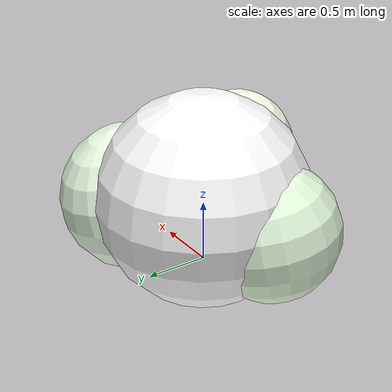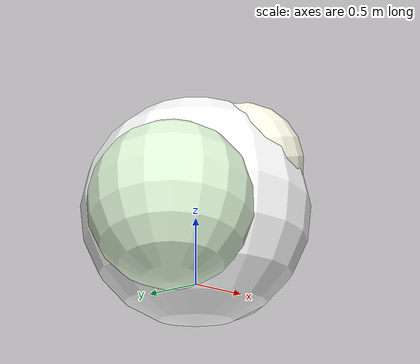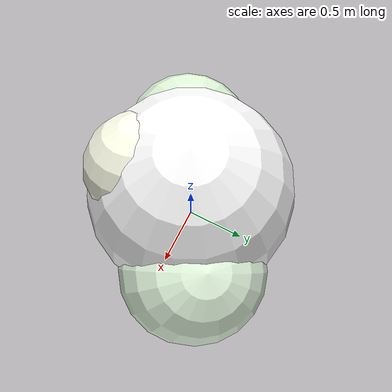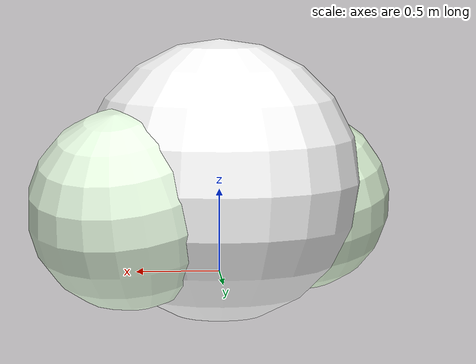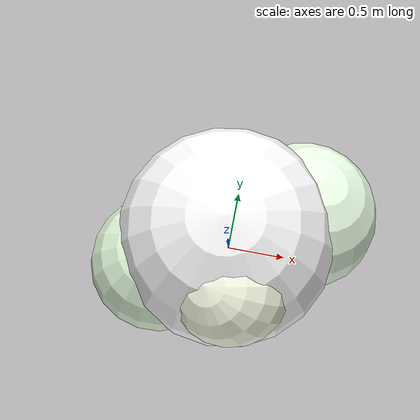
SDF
<?xml version="1.0" ?>
<sdf version="1.9">
  <model name="bush">
    <static>true</static>
    <link name="link">
      <collision name="collision">
        <pose>0 0 0.5 0 0 0</pose>
        <geometry>
          <sphere><radius>0.7</radius></sphere>
        </geometry>
      </collision>

      <!-- Foliage clump: four overlapping textured spheres -->
      <visual name="clump_main">
        <pose>0 0 0.55 0 0 0</pose>
        <geometry><sphere><radius>0.85</radius></sphere></geometry>
        <material>
          <diffuse>1 1 1 1</diffuse>
          <specular>0.05 0.08 0.05 1</specular>
          <pbr>
            <metal>
              <albedo_map>materials/textures/bush_leaves.png</albedo_map>
              <roughness>0.95</roughness>
            </metal>
          </pbr>
        </material>
      </visual>

      <visual name="clump_right">
        <pose>0.55 0.3 0.42 0 0.3 1.1</pose>
        <geometry><sphere><radius>0.6</radius></sphere></geometry>
        <material>
          <diffuse>0.92 1 0.9 1</diffuse>
          <specular>0.05 0.08 0.05 1</specular>
          <pbr>
            <metal>
              <albedo_map>materials/textures/bush_leaves.png</albedo_map>
              <roughness>0.95</roughness>
            </metal>
          </pbr>
        </material>
      </visual>

      <visual name="clump_left">
        <pose>-0.5 -0.28 0.4 0.2 0 2.4</pose>
        <geometry><sphere><radius>0.55</radius></sphere></geometry>
        <material>
          <diffuse>0.88 0.97 0.85 1</diffuse>
          <specular>0.05 0.08 0.05 1</specular>
          <pbr>
            <metal>
              <albedo_map>materials/textures/bush_leaves.png</albedo_map>
              <roughness>0.95</roughness>
            </metal>
          </pbr>
        </material>
      </visual>

      <visual name="clump_top">
        <pose>0.1 -0.38 0.85 0 0.4 3.6</pose>
        <geometry><sphere><radius>0.45</radius></sphere></geometry>
        <material>
          <diffuse>1 1 0.92 1</diffuse>
          <specular>0.05 0.08 0.05 1</specular>
          <pbr>
            <metal>
              <albedo_map>materials/textures/bush_leaves.png</albedo_map>
              <roughness>0.95</roughness>
            </metal>
          </pbr>
        </material>
      </visual>
    </link>
  </model>
</sdf>
